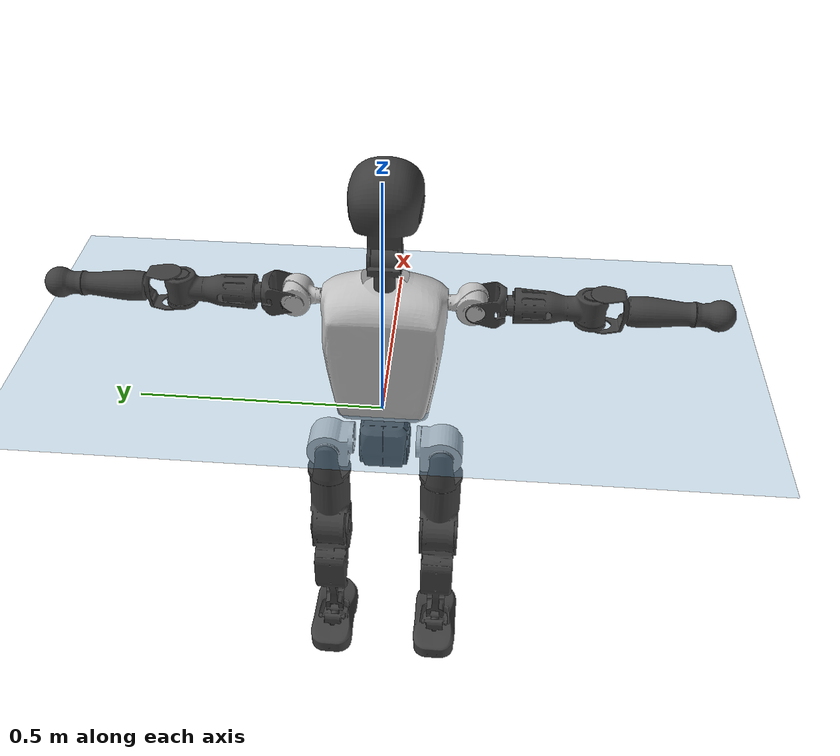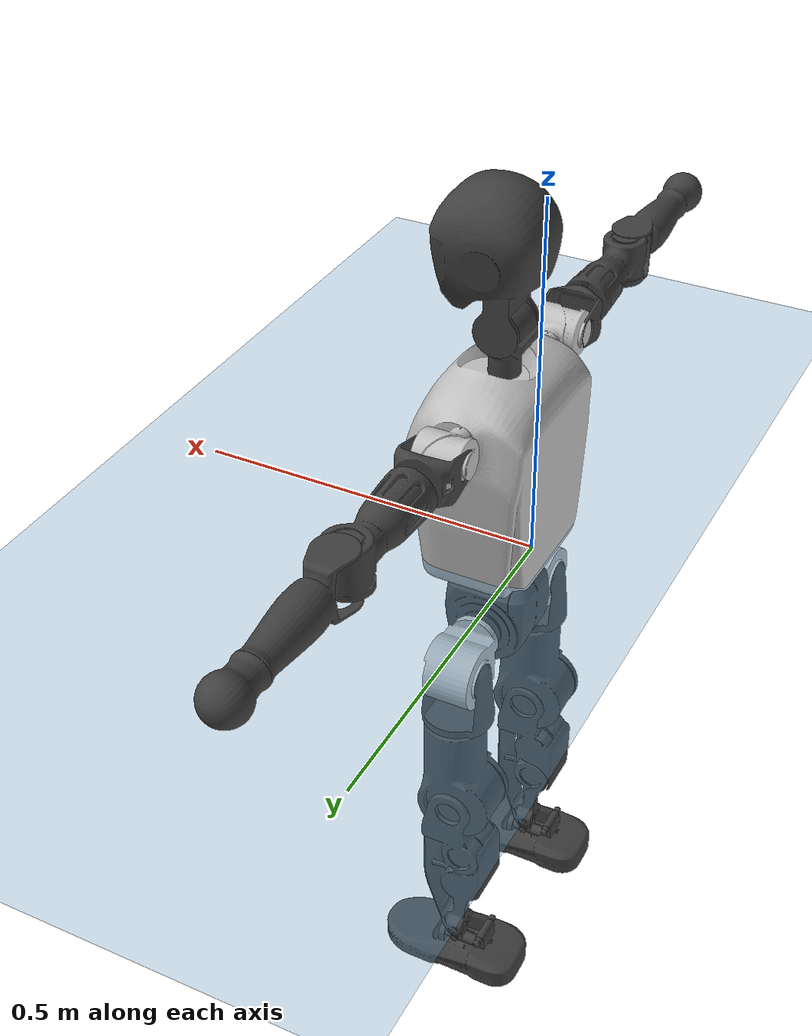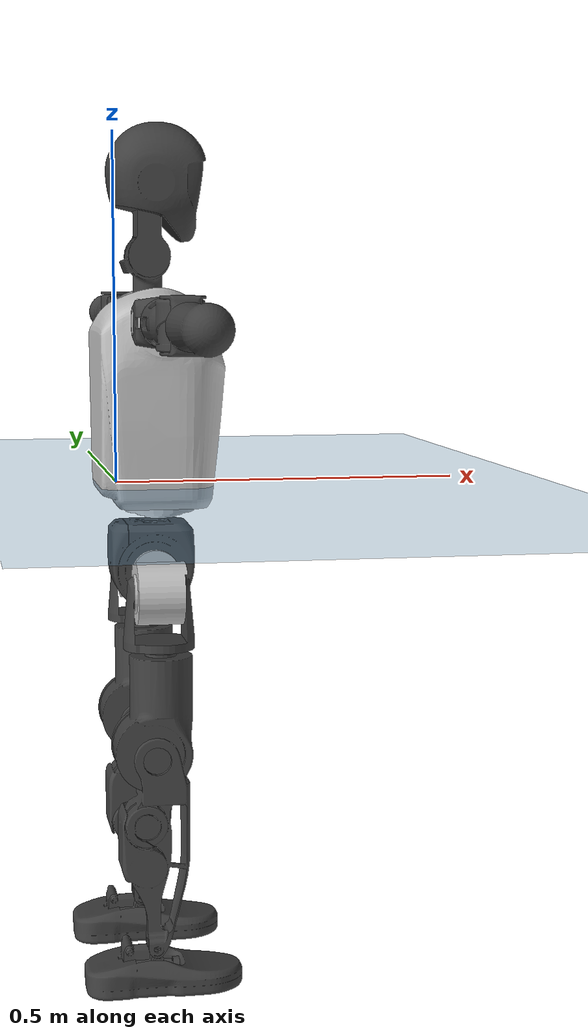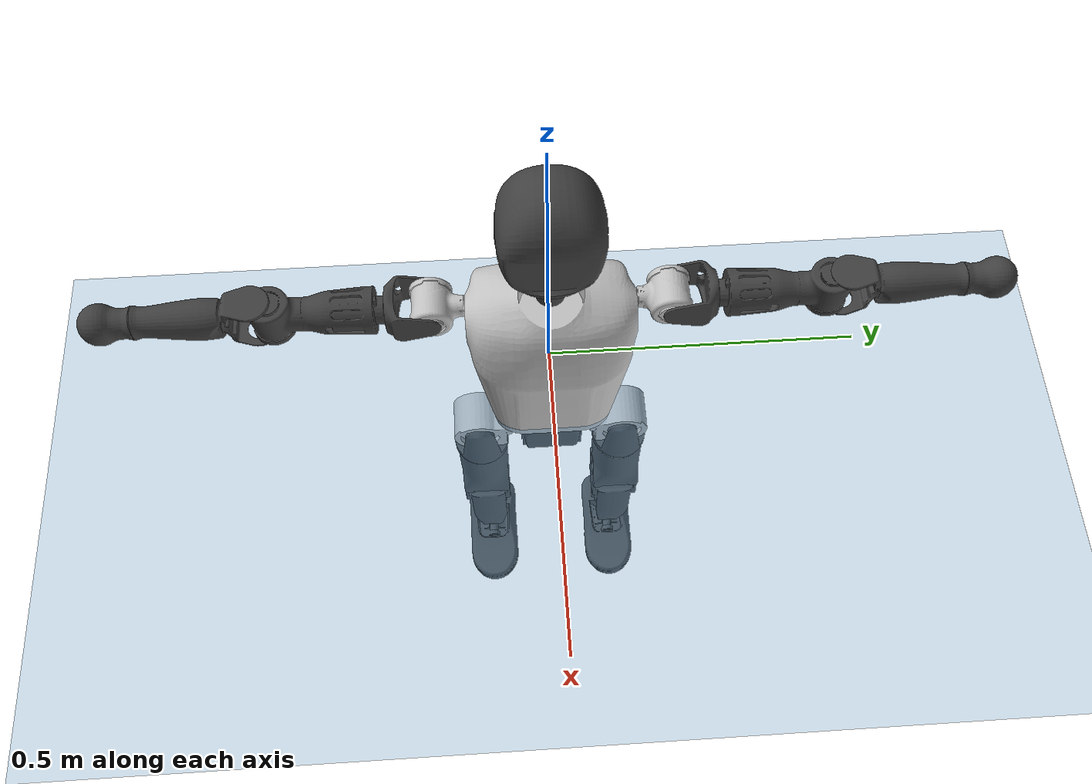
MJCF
<mujoco model="T1">
  <compiler angle="radian" assetdir="assets" balanceinertia="true" inertiafromgeom="false"/>

  <option timestep="0.005" density="1.2" viscosity="2e-05"/>

  <size nkey="1"/>

  <visual>
    <quality shadowsize="8192"/>
    <map shadowclip="0.5"/>
  </visual>

  <default>
    <default class="/">
      <joint armature="0.01" damping="0.01" frictionloss="0.1"/>
      <geom contype="0" conaffinity="0" group="1" solref="-1000 -80"/>
      <site size="0.01 0.005 0.005" group="5"/>
      <general forcelimited="true" biastype="affine" gainprm="25" biasprm="0 -25 -0.6"/>
      <default class="t1">
        <geom rgba="0.25 0.25 0.25 1"/>
        <default class="visual">
          <geom type="mesh" group="2"/>
        </default>
        <default class="collision">
          <geom group="3"/>
        </default>
        <default class="foot">
          <geom size="0.1115 0.05 0.015" type="box" condim="6" group="4" priority="1" solimp="0.015 1 0.015"/>
        </default>
        <default class="reward_collision_sphere">
          <geom group="5" rgba="1 0 0 1"/>
        </default>
      </default>
    </default>
  </default>

  <asset>
    <texture type="skybox" colorspace="auto" name="//unnamed_texture_0" builtin="gradient" rgb1="0.95 0.95 0.95" rgb2="0.95 0.95 0.95" width="100" height="600"/>
    <texture type="2d" colorspace="auto" name="texplane" builtin="checker" rgb1="0.345 0.575 0.748" rgb2="0.345 0.575 0.748" markrgb="1 1 1" width="512" height="512"/>
    <material name="MatPlane" class="/" texture="texplane" texuniform="true" texrepeat="2 2" specular="0.9"/>
    <mesh name="Trunk" class="/" file="Trunk.stl"/>
    <mesh name="H1" class="/" file="H1.stl"/>
    <mesh name="H2" class="/" file="H2.stl"/>
    <mesh name="AL1" class="/" file="AL1.stl"/>
    <mesh name="AL2" class="/" file="AL2.stl"/>
    <mesh name="AL3" class="/" file="AL3.stl"/>
    <mesh name="left_hand_link" class="/" file="left_hand_link.stl"/>
    <mesh name="AR1" class="/" file="AR1.stl"/>
    <mesh name="AR2" class="/" file="AR2.stl"/>
    <mesh name="AR3" class="/" file="AR3.stl"/>
    <mesh name="right_hand_link" class="/" file="right_hand_link.stl"/>
    <mesh name="Waist" class="/" file="Waist.stl"/>
    <mesh name="Hip_Pitch_Left" class="/" file="Hip_Pitch_Left.stl"/>
    <mesh name="Hip_Roll_Left" class="/" file="Hip_Roll_Left.stl"/>
    <mesh name="Hip_Yaw_Left" class="/" file="Hip_Yaw_Left.stl"/>
    <mesh name="Shank_Left" class="/" file="Shank_Left.stl"/>
    <mesh name="Ankle_Cross_Left" class="/" file="Ankle_Cross_Left.stl"/>
    <mesh name="left_foot_link" class="/" file="left_foot_link.stl"/>
    <mesh name="Hip_Pitch_Right" class="/" file="Hip_Pitch_Right.stl"/>
    <mesh name="Hip_Roll_Right" class="/" file="Hip_Roll_Right.stl"/>
    <mesh name="Hip_Yaw_Right" class="/" file="Hip_Yaw_Right.stl"/>
    <mesh name="Shank_Right" class="/" file="Shank_Right.stl"/>
    <mesh name="Ankle_Cross_Right" class="/" file="Ankle_Cross_Right.stl"/>
    <mesh name="right_foot_link" class="/" file="right_foot_link.stl"/>
  </asset>

  <worldbody>
    <geom name="floor" class="/" size="100 100 0.125" type="plane" group="0" material="MatPlane"/>
    <light name="toplight_shadow" class="/" pos="0 0 5" dir="0.0990148 0.0990148 -0.990148" type="directional" ambient="0.04 0.04 0.04" diffuse="0.55 0.55 0.55" specular="0.12 0.12 0.12"/>
    <light name="toplight_fill" class="/" pos="0 0 5" dir="0.0990148 0.0990148 -0.990148" type="directional" castshadow="false" ambient="0.04 0.04 0.04" diffuse="0.3 0.3 0.3" specular="0.08 0.08 0.08"/>
    <body name="trunk" childclass="t1" pos="-8.73091e-05 0.000279351 7.39987e-05" quat="1 -7.15983e-06 -2.02773e-06 6.25739e-06">
      <inertial pos="0.0409485 0.000325275 0.112066" quat="0.999977 0.00291971 -0.00600425 0.00118664" mass="11.7088" diaginertia="0.0243045 0.164167 0.0764149"/>
      <joint name="//unnamed_joint_0" type="free" armature="0" damping="0" frictionloss="0"/>
      <geom name="//unnamed_geom_1" class="visual" rgba="0.76 0.76 0.76 1" mesh="Trunk"/>
      <geom name="//unnamed_geom_2" class="collision" size="0.0747537 0.0996716 0.149507" pos="0.0459071 0 0.127697" type="box"/>
      <geom name="//unnamed_geom_3" class="reward_collision_sphere" size="0.114622" pos="0.0459071 0 0.106414"/>
      <geom name="//unnamed_geom_4" class="reward_collision_sphere" size="0.0149507" pos="0.0459071 0.0986759 0"/>
      <geom name="//unnamed_geom_5" class="reward_collision_sphere" size="0.0149507" pos="0.0459071 -0.0986759 0"/>
      <geom name="//unnamed_geom_6" class="reward_collision_sphere" size="0.0149507" pos="0.0459071 0.124216 0.191545"/>
      <geom name="//unnamed_geom_7" class="reward_collision_sphere" size="0.0149507" pos="0.0459071 -0.124216 0.191545"/>
      <site name="imu" pos="0.00454695 0.00376524 0.00169972" size="0.00996716"/>
      <camera name="track" pos="0 -2.32179 0" quat="0.707107 0.707107 0 0" mode="trackcom"/>
      <camera name="ego_camera" pos="0.0933444 0 0.446938" quat="-0.5 -0.5 0.5 0.5"/>
      <body name="H1" pos="0.0478565 -0.000237952 0.25804" quat="1 -6.77304e-06 -1.17065e-05 -5.03653e-06">
        <inertial pos="-0.001203 -0.000872696 0.0606264" quat="0.763892 -0.0132193 0.00171358 0.645207" mass="0.444529" diaginertia="6.34498e-05 0.000476119 0.00020596"/>
        <joint name="AAHead_yaw" pos="0 0 0" axis="0.00100751 0.00240667 0.999997" stiffness="0.000935881" range="-1.57102 1.56529" armature="0.0101085" damping="0.00672558" frictionloss="0.0938047"/>
        <geom name="//unnamed_geom_8" class="visual" mesh="H1"/>
        <body name="H2" pos="2.48778e-05 0.000144197 0.0658318" quat="1 -5.19996e-05 5.71628e-05 7.76103e-05">
          <inertial pos="0.00563138 0.000702367 0.104961" quat="0.988668 0.104159 -0.0743672 -0.0784574" mass="0.623265" diaginertia="0.000533877 0.00405047 0.00232604"/>
          <joint name="Head_pitch" pos="0 0 0" axis="-0.00206226 -0.999998 9.88799e-05" range="-1.21543 0.350752" armature="0.0100109" damping="0.00591197" frictionloss="0.104026"/>
          <geom name="//unnamed_geom_9" class="visual" mesh="H2"/>
          <geom name="//unnamed_geom_10" class="collision" size="0.0797373" pos="0.00765118 0 0.117055"/>
          <geom name="//unnamed_geom_11" class="reward_collision_sphere" size="0.0897044" pos="0.0153024 0 0.106414"/>
        </body>
      </body>
      <body name="AL1" pos="0.0456761 0.123775 0.233862" quat="1 3.78187e-05 0.000353259 0.000222783">
        <inertial pos="-0.000657605 0.0527919 0.000696433" quat="0.503782 0.494265 -0.505792 0.496064" mass="0.52546" diaginertia="0.000356967 0.00273366 0.000397484"/>
        <joint name="Left_Shoulder_Pitch" pos="0 0 0" axis="-0.00122436 0.999999 0.00121809" range="-3.29823 1.21674" armature="0.00997811" damping="0.0121601" frictionloss="0.0998265"/>
        <geom name="//unnamed_geom_12" class="visual" rgba="0.76 0.76 0.76 1" mesh="AL1"/>
        <body name="AL2" pos="0.000646951 0.0553147 0.000918496" quat="1 3.04505e-05 0.000337103 0.000396631">
          <inertial pos="0.00322354 0.0447249 -0.0010815" quat="0.489828 0.51259 -0.48985 0.507314" mass="0.156531" diaginertia="0.000104798 0.000725485 0.00024095"/>
          <joint name="Left_Shoulder_Roll" pos="0 0 0" axis="-0.999999 -0.000210728 -0.00103936" range="-1.57326 1.74159" armature="0.0100858" damping="0.00267699" frictionloss="0.0971687"/>
          <geom name="//unnamed_geom_13" class="visual" mesh="AL2"/>
          <body name="AL3" pos="0.000761016 0.0718684 -0.000438605" quat="1 3.28629e-05 -3.44563e-06 -3.01421e-05">
            <inertial pos="-0.00075672 0.0987365 0.000753103" quat="0.709382 0.704823 0.00082839 -2.52585e-06" mass="0.998052" diaginertia="0.00335068 0.0270451 0.000846294"/>
            <joint name="Left_Elbow_Pitch" pos="0 0 0" axis="0.00337179 -0.999994 -0.000406655" range="-2.26572 2.2758" armature="0.00976309" damping="0.0072717" frictionloss="0.0993177"/>
            <geom name="//unnamed_geom_14" class="visual" mesh="AL3"/>
            <geom name="//unnamed_geom_15" class="collision" size="0.0299015 0.0747537" pos="0 0.0580446 0" quat="0.707105 0.707108 0 0" type="cylinder"/>
            <geom name="//unnamed_geom_16" class="reward_collision_sphere" size="0.0358818"/>
            <body name="left_hand_link" pos="-0.000232573 0.171611 0.00030732" quat="1 -0.000163056 0.000155248 5.11658e-05">
              <inertial pos="-0.00042165 0.127071 0.000253103" quat="0.707472 0.706741 0.000629577 0.000160883" mass="0.325553" diaginertia="0.00214663 0.0171537 0.000292121"/>
              <joint name="Left_Elbow_Yaw" pos="0 0 0" axis="0.00124299 0.00212856 0.999997" range="-2.45209 0.00920412" armature="0.0100653" damping="0.00463146" frictionloss="0.0973112"/>
              <geom name="//unnamed_geom_17" class="visual" mesh="left_hand_link"/>
              <geom name="//unnamed_geom_18" class="collision" size="0.0299015 0.0872127" pos="0 0.150916 0" quat="0.707105 0.707108 0 0" type="cylinder"/>
              <geom name="//unnamed_geom_19" class="reward_collision_sphere" size="0.0498358"/>
              <geom name="//unnamed_geom_20" class="reward_collision_sphere" size="0.0348851" pos="0 0.127698 0"/>
              <geom name="//unnamed_geom_21" class="reward_collision_sphere" size="0.0348851" pos="0 0.249592 0"/>
            </body>
          </body>
        </body>
      </body>
      <body name="AR1" pos="0.0444801 -0.12261 0.233645" quat="1 -2.11811e-05 8.33751e-05 -5.11517e-05">
        <inertial pos="-9.51172e-05 -0.0523738 -0.000498111" quat="0.50581 0.494748 -0.503352 0.496001" mass="0.520807" diaginertia="0.000356746 0.00268538 0.000393222"/>
        <joint name="Right_Shoulder_Pitch" pos="0 0 0" axis="-0.00280662 -0.999993 -0.002392" range="-1.22469 3.30586" armature="0.0100475" damping="0.00540629" frictionloss="0.0962814"/>
        <geom name="//unnamed_geom_22" class="visual" rgba="0.76 0.76 0.76 1" mesh="AR1"/>
        <body name="AR2" pos="-0.00101363 -0.0540828 -0.000332737" quat="1 -7.59008e-05 8.06639e-05 9.57963e-05">
          <inertial pos="0.00382309 -0.0450276 0.00084191" quat="0.510328 0.489539 -0.51135 0.488302" mass="0.157693" diaginertia="0.000103684 0.000729011 0.000237722"/>
          <joint name="Right_Shoulder_Roll" pos="0 0 0" axis="-0.999979 -0.00280606 -0.0058477" range="-1.7422 1.56775" armature="0.0100106" damping="0.00263458" frictionloss="0.101329"/>
          <geom name="//unnamed_geom_23" class="visual" mesh="AR2"/>
          <body name="AR3" pos="0.000561818 -0.0709723 0.000241625" quat="1 0.000523211 -0.000107872 -0.000138151">
            <inertial pos="-0.000224673 -0.0989969 -0.000459008" quat="0.708267 0.705931 0.0014745 0.00409461" mass="0.999309" diaginertia="0.00333588 0.0264014 0.000839067"/>
            <joint name="Right_Elbow_Pitch" pos="0 0 0" axis="-0.000113622 1 9.08405e-05" stiffness="6.40005e-05" range="-2.27694 2.27025" armature="0.00992387" damping="0.007689" frictionloss="0.10216"/>
            <geom name="//unnamed_geom_24" class="visual" mesh="AR3"/>
            <geom name="//unnamed_geom_25" class="collision" size="0.0299015 0.0747537" pos="0 -0.0580446 0" quat="0.707105 0.707108 0 0" type="cylinder"/>
            <geom name="//unnamed_geom_26" class="reward_collision_sphere" size="0.0358818"/>
            <body name="right_hand_link" pos="-0.00013872 -0.170404 0.000459882" quat="1 0.0001298 5.96764e-06 -0.000338759">
              <inertial pos="0.00016026 -0.127831 0.000458179" quat="0.706286 0.707921 0.00185939 0.00184407" mass="0.319546" diaginertia="0.00212842 0.0170527 0.000292734"/>
              <joint name="Right_Elbow_Yaw" pos="0 0 0" axis="-0.000845175 -0.000972068 0.999999" range="-0.0178106 2.43563" armature="0.0100346" damping="0.00670783" frictionloss="0.102191"/>
              <geom name="//unnamed_geom_27" class="visual" mesh="right_hand_link"/>
              <geom name="//unnamed_geom_28" class="collision" size="0.0299015 0.0872127" pos="0 -0.150916 0" quat="0.707105 0.707108 0 0" type="cylinder"/>
              <geom name="//unnamed_geom_29" class="reward_collision_sphere" size="0.0498358"/>
              <geom name="//unnamed_geom_30" class="reward_collision_sphere" size="0.0348851" pos="0 -0.127698 0"/>
              <geom name="//unnamed_geom_31" class="reward_collision_sphere" size="0.0348851" pos="0 -0.249592 0"/>
            </body>
          </body>
        </body>
      </body>
      <body name="Waist" pos="0.048833 -0.00102852 -0.123977" quat="1 0.000114733 -2.25634e-05 3.46585e-05">
        <inertial pos="0.000319489 2.00634e-05 0.00837741" quat="0.983643 0.000638352 -0.180112 0.00256447" mass="2.60532" diaginertia="0.00140704 0.0113424 0.00652866"/>
        <joint name="Waist" pos="0 0 0" axis="0.00133524 -0.00236133 0.999996" range="-1.55338 1.57361" armature="0.00959449" damping="0.0105017" frictionloss="0.100093"/>
        <geom name="//unnamed_geom_32" class="visual" mesh="Waist"/>
        <body name="Hip_Pitch_Left" pos="0.000602825 0.122339 -0.0011709" quat="1 -0.000184746 0.000166647 -1.15119e-05">
          <inertial pos="0.000476207 -0.00912371 -0.0202284" quat="0.975288 0.220693 0.0103688 7.18699e-05" mass="1.01997" diaginertia="0.00047435 0.00305162 0.00171298"/>
          <joint name="Left_Hip_Pitch" pos="0 0 0" axis="-0.000875604 0.999999 -0.00116966" range="-1.80208 1.57928" armature="0.0103271" damping="0.00678008" frictionloss="0.098601"/>
          <geom name="//unnamed_geom_33" class="visual" rgba="0.76 0.76 0.76 1" mesh="Hip_Pitch_Left"/>
          <body name="Hip_Roll_Left" pos="0.000399516 0.000860618 -0.0216903" quat="1 -3.06337e-05 8.86447e-06 2.23163e-05">
            <inertial pos="0.00196652 -0.000120091 -0.0579886" quat="0.708896 -0.00446048 -0.00801285 0.705253" mass="0.377108" diaginertia="0.000457728 0.0031561 0.000699119"/>
            <joint name="Left_Hip_Roll" pos="0 0 0" axis="-0.999997 0.00212596 0.00136911" range="-1.56986 0.211621" armature="0.010149" damping="0.0118985" frictionloss="0.104212"/>
            <geom name="//unnamed_geom_34" class="visual" mesh="Hip_Roll_Left"/>
            <geom name="//unnamed_geom_35" class="reward_collision_sphere" size="0.0548194"/>
            <body name="Hip_Yaw_Left" pos="0.00128649 0.000110915 -0.0871865" quat="1 0.000189484 -0.000162551 -4.36535e-05">
              <inertial pos="-0.005051 -8.05427e-05 -0.0955222" quat="0.696813 -0.0339913 -0.0307829 0.715785" mass="2.14016" diaginertia="0.00676501 0.052983 0.003548"/>
              <joint name="Left_Hip_Yaw" pos="0 0 0" axis="6.09068e-05 0.000356771 -1" range="-0.985828 1.01035" armature="0.0100575" damping="0.0133817" frictionloss="0.0997844"/>
              <geom name="//unnamed_geom_36" class="visual" mesh="Hip_Yaw_Left"/>
              <geom name="//unnamed_geom_37" class="collision" size="0.0498358 0.0797373" type="cylinder"/>
              <body name="Shank_Left" pos="-0.00939408 -3.07342e-06 -0.144552" quat="1 6.18718e-05 -8.29652e-05 -1.27694e-05">
                <inertial pos="-0.00509333 0.000356074 -0.132376" quat="0.997565 0.00147005 -0.0237857 0.0655402" mass="1.69343" diaginertia="0.00910456 0.0728183 0.00255486"/>
                <joint name="Left_Knee_Pitch" pos="0 0 0" axis="0.00161071 0.999989 -0.00445969" range="-0.0173339 2.35495" armature="0.0100487" damping="0.00917559" frictionloss="0.0974683"/>
                <geom name="//unnamed_geom_38" class="visual" mesh="Shank_Left"/>
                <geom name="//unnamed_geom_39" class="collision" size="0.0498358 0.0747537" pos="0 0 -0.127697" type="cylinder"/>
                <geom name="//unnamed_geom_40" class="reward_collision_sphere" size="0.0647865"/>
                <body name="Ankle_Cross_Left" pos="-0.00077787 -0.000445007 -0.299071" quat="1 5.85044e-06 0.000133208 0.000123093">
                  <inertial pos="-0.00211129 -0.000614784 -0.00941987" quat="0.44164 0.55334 0.550117 0.442877" mass="0.0718163" diaginertia="7.58025e-06 5.46601e-05 1.54473e-05"/>
                  <joint name="Left_Ankle_Pitch" pos="0 0 0" axis="-0.00039688 1 -9.938e-05" range="-0.863229 0.358267" armature="0.0103559" damping="0.0108078" frictionloss="0.100211"/>
                  <geom name="//unnamed_geom_41" class="visual" mesh="Ankle_Cross_Left"/>
                  <body name="left_foot_link" pos="-0.00111398 0.000676901 -0.0133807" quat="1 -0.000285357 0.000217841 0.00010814">
                    <inertial pos="0.000459292 6.72227e-05 -0.00936155" quat="0.000383879 0.620738 -0.000115974 0.784018" mass="0.676193" diaginertia="0.000706026 0.00497379 0.00302698"/>
                    <joint name="Left_Ankle_Roll" pos="0 0 0" axis="-0.999996 -0.00197749 -0.00204145" range="-0.44234 0.440526" armature="0.0100053" damping="0.0114125" frictionloss="0.0999931"/>
                    <geom name="//unnamed_geom_42" class="visual" mesh="left_foot_link"/>
                    <geom name="left_foot" class="foot" size="0.105632 0.0508567 0.0154085" pos="0.00765118 0 -0.0159621"/>
                    <geom name="//unnamed_geom_44" class="reward_collision_sphere" size="0.0518292" pos="0.00765118 0 -0.0159621"/>
                    <geom name="//unnamed_geom_45" class="reward_collision_sphere" size="0.0299015" pos="0.0726862 -0.0267005 -0.0159621"/>
                    <geom name="//unnamed_geom_46" class="reward_collision_sphere" size="0.0299015" pos="-0.0535583 -0.0267005 -0.0159621"/>
                    <site name="left_foot" class="foot" pos="0.00765118 0 -0.0159621" size="0.00996716"/>
                  </body>
                </body>
              </body>
            </body>
          </body>
        </body>
        <body name="Hip_Pitch_Right" pos="-0.0011875 -0.122968 -0.000602715" quat="1 4.72266e-05 0.000114231 -8.25377e-05">
          <inertial pos="0.000857411 0.0087521 -0.0190417" quat="0.973586 -0.227827 0.0145807 -0.00350686" mass="1.00193" diaginertia="0.000468525 0.0030439 0.00166403"/>
          <joint name="Right_Hip_Pitch" pos="0 0 0" axis="-0.000783892 -0.999998 -0.00201063" stiffness="0.00104307" range="-1.57109 1.78046" armature="0.0103832" damping="0.00730944" frictionloss="0.0989183"/>
          <geom name="//unnamed_geom_47" class="visual" rgba="0.76 0.76 0.76 1" mesh="Hip_Pitch_Right"/>
          <body name="Hip_Roll_Right" pos="0.00045583 -0.000208785 -0.0204421" quat="1 -0.000193664 1.41582e-05 0.000326528">
            <inertial pos="0.000952433 -0.000275352 -0.0579969" quat="0.706854 -0.00459793 -0.00935525 0.707283" mass="0.381287" diaginertia="0.000456219 0.0031853 0.000701447"/>
            <joint name="Right_Hip_Roll" pos="0 0 0" axis="-0.999997 -0.00162787 -0.00173226" range="-0.179784 1.56229" armature="0.0100064" damping="0.00694985" frictionloss="0.0953298"/>
            <geom name="//unnamed_geom_48" class="visual" mesh="Hip_Roll_Right"/>
            <geom name="//unnamed_geom_49" class="reward_collision_sphere" size="0.0548194"/>
            <body name="Hip_Yaw_Right" pos="-0.00019175 -0.000395231 -0.0869527" quat="1 7.91431e-05 -4.26595e-05 6.14882e-05">
              <inertial pos="-0.00501482 0.000441032 -0.0955543" quat="0.714597 -0.0314333 -0.0340279 0.698001" mass="2.16991" diaginertia="0.00675394 0.0529817 0.00359269"/>
              <joint name="Right_Hip_Yaw" pos="0 0 0" axis="0.00979709 -0.00248671 -0.999949" range="-0.997076 1.01125" armature="0.00991927" damping="0.0027979" frictionloss="0.0994903"/>
              <geom name="//unnamed_geom_50" class="visual" mesh="Hip_Yaw_Right"/>
              <geom name="//unnamed_geom_51" class="collision" size="0.0498358 0.0797373" type="cylinder"/>
              <body name="Shank_Right" pos="-0.0108393 -0.000219278 -0.142383" quat="1 -0.000261083 -0.000293589 0.000298831">
                <inertial pos="-0.00449314 -0.000249985 -0.130071" quat="0.999262 -0.000532503 -0.0233919 -0.0304739" mass="1.79527" diaginertia="0.00930926 0.0754954 0.00272592"/>
                <joint name="Right_Knee_Pitch" pos="0 0 0" axis="-0.00414958 -0.999959 0.00806633" range="-2.3343 -0.00545312" armature="0.0103951" damping="0.00624911" frictionloss="0.0993282"/>
                <geom name="//unnamed_geom_52" class="visual" mesh="Shank_Right"/>
                <geom name="//unnamed_geom_53" class="collision" size="0.0498358 0.0747537" pos="0 0 -0.127697" type="cylinder"/>
                <geom name="//unnamed_geom_54" class="reward_collision_sphere" size="0.0647865"/>
                <body name="Ankle_Cross_Right" pos="0.000668313 -0.000165346 -0.298282" quat="1 1.24001e-05 -3.50131e-06 6.76724e-06">
                  <inertial pos="-0.00302112 0.00101059 -0.00846424" quat="0.443392 0.550059 0.550981 0.444138" mass="0.071568" diaginertia="7.47414e-06 5.3145e-05 1.525e-05"/>
                  <joint name="Right_Ankle_Pitch" pos="0 0 0" axis="-0.00304835 -0.999995 -0.00116204" range="-0.347909 0.86841" armature="0.00994126" damping="0.00834482" frictionloss="0.0972866"/>
                  <geom name="//unnamed_geom_55" class="visual" mesh="Ankle_Cross_Right"/>
                  <body name="right_foot_link" pos="0.000543019 -0.000662669 -0.0119592" quat="1 6.79971e-06 -1.78088e-05 -2.06035e-05">
                    <inertial pos="-0.000864741 -0.000432418 -0.00973349" quat="-7.43389e-05 0.620594 0.000534751 0.784132" mass="0.676461" diaginertia="0.000707065 0.00505237 0.00296881"/>
                    <joint name="Right_Ankle_Roll" pos="0 0 0" axis="-0.999988 0.00474802 -0.000915369" range="-0.451077 0.438313" armature="0.0100662" damping="0.00407035" frictionloss="0.10131"/>
                    <geom name="//unnamed_geom_56" class="visual" mesh="right_foot_link"/>
                    <geom name="right_foot" class="foot" size="0.101968 0.0494942 0.0155594" pos="0.00765118 0 -0.0159621"/>
                    <geom name="//unnamed_geom_58" class="reward_collision_sphere" size="0.0398686"/>
                    <geom name="//unnamed_geom_59" class="reward_collision_sphere" size="0.0299015" pos="0.00765118 0 -0.0159621"/>
                    <geom name="//unnamed_geom_60" class="reward_collision_sphere" size="0.0299015" pos="0.0726862 0.0267005 -0.0159621"/>
                    <geom name="//unnamed_geom_61" class="reward_collision_sphere" size="0.0299015" pos="-0.0535583 0.0267005 -0.0159621"/>
                    <site name="right_foot" class="foot" pos="0.00765118 0 -0.0159621" size="0.00996716"/>
                  </body>
                </body>
              </body>
            </body>
          </body>
        </body>
      </body>
    </body>
  </worldbody>

  <contact>
    <pair class="/" geom1="floor" geom2="left_foot" name="//unnamed_contact_0"/>
    <pair class="/" geom1="floor" geom2="right_foot" name="//unnamed_contact_1"/>
  </contact>

  <actuator>
    <general name="AAHead_yaw" class="/" joint="AAHead_yaw" forcerange="-7.03594 7.03594" gainprm="25.3591" biasprm="0 -25.3591 -0.583293"/>
    <general name="Head_pitch" class="/" joint="Head_pitch" forcerange="-6.96327 6.96327" gainprm="25.3591" biasprm="0 -25.3591 -0.583293"/>
    <general name="Left_Shoulder_Pitch" class="/" joint="Left_Shoulder_Pitch" forcerange="-18.4783 18.4783" gainprm="25.3591" biasprm="0 -25.3591 -0.583293"/>
    <general name="Left_Shoulder_Roll" class="/" joint="Left_Shoulder_Roll" forcerange="-17.8406 17.8406" gainprm="25.3591" biasprm="0 -25.3591 -0.583293"/>
    <general name="Left_Elbow_Pitch" class="/" joint="Left_Elbow_Pitch" forcerange="-18.0529 18.0529" gainprm="25.3591" biasprm="0 -25.3591 -0.583293"/>
    <general name="Left_Elbow_Yaw" class="/" joint="Left_Elbow_Yaw" forcerange="-18.095 18.095" gainprm="25.3591" biasprm="0 -25.3591 -0.583293"/>
    <general name="Right_Shoulder_Pitch" class="/" joint="Right_Shoulder_Pitch" forcerange="-17.959 17.959" gainprm="25.3591" biasprm="0 -25.3591 -0.583293"/>
    <general name="Right_Shoulder_Roll" class="/" joint="Right_Shoulder_Roll" forcerange="-18.5687 18.5687" gainprm="25.3591" biasprm="0 -25.3591 -0.583293"/>
    <general name="Right_Elbow_Pitch" class="/" joint="Right_Elbow_Pitch" forcerange="-18.2684 18.2684" gainprm="25.3591" biasprm="0 -25.3591 -0.583293"/>
    <general name="Right_Elbow_Yaw" class="/" joint="Right_Elbow_Yaw" forcerange="-17.755 17.755" gainprm="25.3591" biasprm="0 -25.3591 -0.583293"/>
    <general name="Waist" class="/" joint="Waist" forcerange="-29.496 29.496" gainprm="25.3591" biasprm="0 -25.3591 -0.583293"/>
    <general name="Left_Hip_Pitch" class="/" joint="Left_Hip_Pitch" forcerange="-44.6426 44.6426" gainprm="25.3591" biasprm="0 -25.3591 -0.583293"/>
    <general name="Left_Hip_Roll" class="/" joint="Left_Hip_Roll" forcerange="-29.2701 29.2701" gainprm="25.3591" biasprm="0 -25.3591 -0.583293"/>
    <general name="Left_Hip_Yaw" class="/" joint="Left_Hip_Yaw" forcerange="-30.3277 30.3277" gainprm="25.3591" biasprm="0 -25.3591 -0.583293"/>
    <general name="Left_Knee_Pitch" class="/" joint="Left_Knee_Pitch" forcerange="-60.1036 60.1036" gainprm="25.3591" biasprm="0 -25.3591 -0.583293"/>
    <general name="Left_Ankle_Pitch" class="/" joint="Left_Ankle_Pitch" forcerange="-19.777 19.777" gainprm="25.3591" biasprm="0 -25.3591 -0.583293"/>
    <general name="Left_Ankle_Roll" class="/" joint="Left_Ankle_Roll" forcerange="-14.9558 14.9558" gainprm="25.3591" biasprm="0 -25.3591 -0.583293"/>
    <general name="Right_Hip_Pitch" class="/" joint="Right_Hip_Pitch" forcerange="-44.8214 44.8214" gainprm="25.3591" biasprm="0 -25.3591 -0.583293"/>
    <general name="Right_Hip_Roll" class="/" joint="Right_Hip_Roll" forcerange="-30.0956 30.0956" gainprm="25.3591" biasprm="0 -25.3591 -0.583293"/>
    <general name="Right_Hip_Yaw" class="/" joint="Right_Hip_Yaw" forcerange="-30.6763 30.6763" gainprm="25.3591" biasprm="0 -25.3591 -0.583293"/>
    <general name="Right_Knee_Pitch" class="/" joint="Right_Knee_Pitch" forcerange="-59.5374 59.5374" gainprm="25.3591" biasprm="0 -25.3591 -0.583293"/>
    <general name="Right_Ankle_Pitch" class="/" joint="Right_Ankle_Pitch" forcerange="-19.5774 19.5774" gainprm="25.3591" biasprm="0 -25.3591 -0.583293"/>
    <general name="Right_Ankle_Roll" class="/" joint="Right_Ankle_Roll" forcerange="-15.4704 15.4704" gainprm="25.3591" biasprm="0 -25.3591 -0.583293"/>
  </actuator>

  <sensor>
    <gyro site="imu" name="imu_angular_velocity"/>
    <velocimeter site="imu" name="imu_linear_velocity"/>
    <framelinvel objtype="site" objname="left_foot" name="left_foot_global_linear_velocity"/>
    <framelinvel objtype="site" objname="right_foot" name="right_foot_global_linear_velocity"/>
  </sensor>

  <keyframe>
    <key name="home" qpos="0 0 0.6385 1 0 0 0 0 0 0 1.4 0 -0.4 0 -1.4 0 0.4 0 -0.4 0 0 0.8 -0.4 0 0.4 0 0 -0.8 0.4 0"/>
  </keyframe>
</mujoco>
